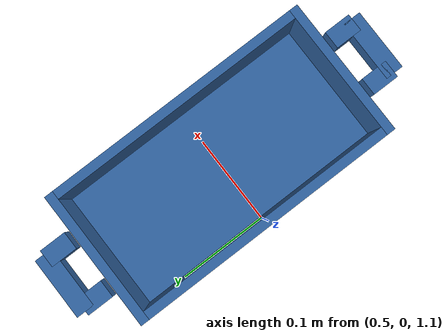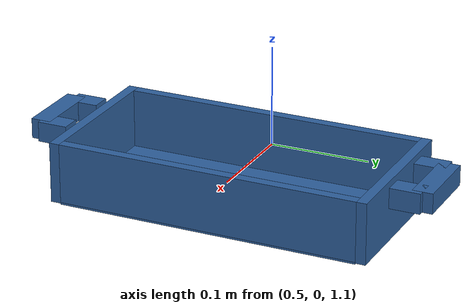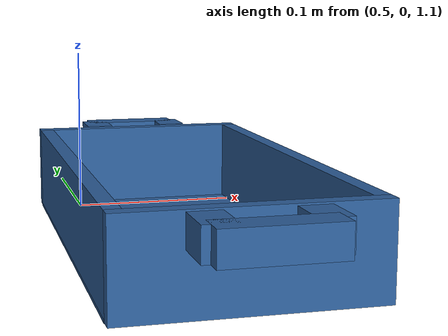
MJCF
<?xml version='1.0' encoding='utf-8'?>
<mujoco model="ffw_sg2_world">
  <compiler angle="radian" meshdir="assets" autolimits="true" />
  <option timestep="0.0015" integrator="implicitfast" gravity="0 0 -9.81" iterations="120" ls_iterations="60" cone="pyramidal" />
  <asset>
    <texture name="floor_grid_tex" type="2d" builtin="checker" width="1024" height="1024" rgb1="0.10 0.12 0.18" rgb2="0.14 0.16 0.22" mark="none" />
    <material name="floor_grid_mat" texture="floor_grid_tex" texrepeat="6 6" texuniform="true" reflectance="0.02" />
    <texture name="white_sky" type="skybox" builtin="gradient" rgb1="1 1 1" rgb2="1 1 1" width="256" height="1536" />
    <material name="object_matte" rgba="0.18 0.38 0.62 1" />
  </asset>
  <worldbody>
    <light name="main_light" pos="0 0 5" dir="0 0 -1" diffuse="1 1 1" specular="0.1 0.1 0.1" directional="true" />
    <geom name="floor" type="plane" size="0 0 0.05" material="floor_grid_mat" contype="1" conaffinity="1" friction="1 0.005 0.0001" />
    <body name="object" pos="0.57 0.0 1.07">
      <freejoint name="object_freejoint" />
      <inertial pos="0 0 0.0" mass="0.1" diaginertia="0.002 0.002 0.002" />
      <geom name="pot_bottom" type="box" friction="2.0 0.02 0.001" size="0.08 0.15 0.001" pos="0 0 0" mass="0" material="object_matte" />
      <geom name="pot_wall_front" type="box" friction="2.0 0.02 0.001" size="0.08 0.005 0.03" pos="0 0.155 0.03" density="1500" material="object_matte" />
      <geom name="pot_wall_back" type="box" friction="2.0 0.02 0.001" size="0.08 0.005 0.03" pos="0 -0.155 0.03" density="1500" material="object_matte" />
      <geom name="pot_wall_left" type="box" friction="2.0 0.02 0.001" size="0.005 0.15 0.03" pos="-0.075 0 0.03" density="1500" material="object_matte" />
      <geom name="pot_wall_right" type="box" friction="2.0 0.02 0.001" size="0.005 0.15 0.03" pos="0.075 0 0.03" density="1500" material="object_matte" />
      <geom name="left_handle_bar" type="box" friction="2.0 0.02 0.001" pos="-0.03  0.18 0.05" size="0.01 0.015 0.01" density="1200" material="object_matte" />
      <geom name="left_handle_bar_2" type="box" friction="2.0 0.02 0.001" pos=" 0.03  0.18 0.05" size="0.01 0.015 0.01" density="1200" material="object_matte" />
      <geom name="left_handle_bar_3" type="box" friction="2.0 0.02 0.001" pos=" 0.0   0.195  0.05" size="0.035 0.01 0.01" density="1200" material="object_matte" />
      <geom name="right_handle_bar" type="box" friction="2.0 0.02 0.001" pos="-0.03 -0.18 0.05" size="0.01 0.015 0.01" density="1200" material="object_matte" />
      <geom name="right_handle_bar_2" type="box" friction="2.0 0.02 0.001" pos=" 0.03 -0.18 0.05" size="0.01 0.015 0.01" density="1200" material="object_matte" />
      <geom name="right_handle_bar_3" type="box" friction="2.0 0.02 0.001" pos=" 0.0  -0.195  0.05" size="0.035 0.01 0.01" density="1200" material="object_matte" />
    </body>
  </worldbody>
</mujoco>
